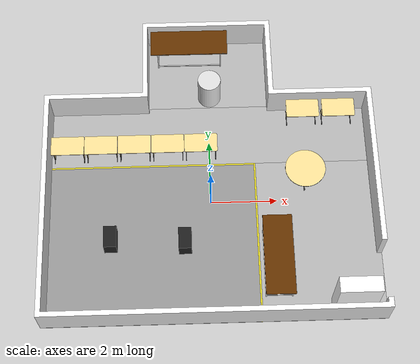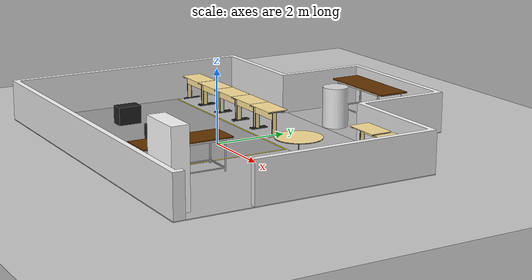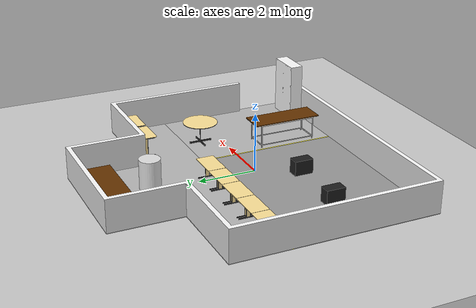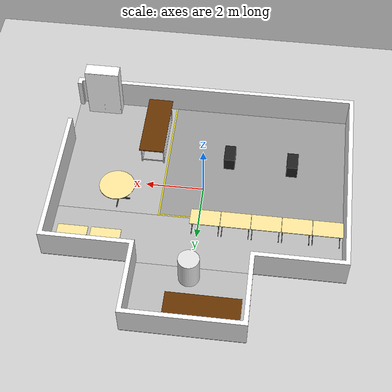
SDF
<sdf version="1.7">
 <world name="default">
  <light name="sun" type="directional">
   <cast_shadows>0</cast_shadows>
   <pose>0 0 10 0 -0 0</pose>
   <diffuse>0.8 0.8 0.8 1</diffuse>
   <specular>0.1 0.1 0.1 1</specular>
   <attenuation>
    <range>1000</range>
    <constant>0.9</constant>
    <linear>0.01</linear>
    <quadratic>0.001</quadratic>
   </attenuation>
   <direction>-0.5 0.5 -1</direction>
   <spot><inner_angle>0</inner_angle><outer_angle>0</outer_angle><falloff>0</falloff></spot>
  </light>
  <model name="ground_plane">
   <static>1</static>
   <link name="link">
    <collision name="collision">
     <geometry><plane><normal>0 0 1</normal><size>100 100</size></plane></geometry>
     <surface><friction><ode><mu>1</mu><mu2>2</mu2></ode></friction></surface>
    </collision>
    <visual name="visual">
     <cast_shadows>0</cast_shadows>
     <geometry><plane><normal>0 0 1</normal><size>100 100</size></plane></geometry>
     <material>
      <script><uri>file://media/materials/scripts/gazebo.material</uri><name>Gazebo/Grey</name></script>
     </material>
    </visual>
   </link>
  </model>
  <gravity>0 0 -9.8</gravity>
  <magnetic_field>6e-06 2.3e-05 -4.2e-05</magnetic_field>
  <atmosphere type="adiabatic"/>
  <physics name="default_physics" default="0" type="ode">
   <max_step_size>0.01</max_step_size>
   <real_time_factor>1</real_time_factor>
   <real_time_update_rate>100</real_time_update_rate>
  </physics>
  <scene><ambient>0.4 0.4 0.4 1</ambient><background>0.7 0.7 0.7 1</background><shadows>0</shadows></scene>
  <spherical_coordinates>
   <surface_model>EARTH_WGS84</surface_model>
   <latitude_deg>0</latitude_deg>
   <longitude_deg>0</longitude_deg>
   <elevation>0</elevation>
   <heading_deg>0</heading_deg>
  </spherical_coordinates>
  <model name="lar_floor">
   <pose>0 -0.25 0 0 -0 0</pose>
   <frame name="floor::__model__" attached_to="floor::floor">
    <pose relative_to="__model__">0 0 0 0 -0 0</pose>
   </frame>
   <link name="floor::floor">
    <pose relative_to="floor::__model__">0 0 0 0 -0 0</pose>
    <visual name="visual_1">
     <pose>3.2 -0.985 0.01 0 -0 0</pose>
     <geometry><box><size>3.6 5.03 0.02</size></box></geometry>
     <material>
      <script>
       <uri>model://lar_floor/materials/scripts/lar_floor.material</uri>
       <name>lar_floor/visual_1</name>
      </script>
     </material>
     <cast_shadows>0</cast_shadows>
    </visual>
    <visual name="visual_2">
     <pose>0 4.75 0.01 0 -0 0</pose>
     <geometry><box><size>4 2.5 0.02</size></box></geometry>
     <material>
      <script>
       <uri>model://lar_floor/materials/scripts/lar_floor.material</uri>
       <name>lar_floor/visual_2</name>
      </script>
     </material>
     <cast_shadows>0</cast_shadows>
    </visual>
    <visual name="visual_3">
     <pose>-1.825 -1.01 0.01 0 -0 0</pose>
     <geometry><box><size>6.35 4.98 0.02</size></box></geometry>
     <material>
      <script><uri>file://media/materials/scripts/gazebo.material</uri><name>Gazebo/Grey</name></script>
     </material>
     <cast_shadows>0</cast_shadows>
    </visual>
    <visual name="visual_4">
     <pose>1.375 -0.985 0.01 0 -0 0</pose>
     <geometry><box><size>0.05 5.03 0.02</size></box></geometry>
     <material>
      <script><uri>file://media/materials/scripts/gazebo.material</uri><name>Gazebo/DarkYellow</name></script>
     </material>
     <cast_shadows>0</cast_shadows>
    </visual>
    <visual name="visual_5">
     <pose>-1.825 1.505 0.01 0 -0 0</pose>
     <geometry><box><size>6.35 0.05 0.02</size></box></geometry>
     <material>
      <script><uri>file://media/materials/scripts/gazebo.material</uri><name>Gazebo/DarkYellow</name></script>
     </material>
     <cast_shadows>0</cast_shadows>
    </visual>
    <visual name="visual_6">
     <pose>0 2.515 0.01 0 -0 0</pose>
     <geometry><box><size>10 1.97 0.02</size></box></geometry>
     <material>
      <script>
       <uri>model://lar_floor/materials/scripts/lar_floor.material</uri>
       <name>lar_floor/visual_6</name>
      </script>
     </material>
     <cast_shadows>0</cast_shadows>
    </visual>
    <collision name="collision_1">
     <pose>0 0 0.01 0 -0 0</pose>
     <geometry><box><size>10 7 0.1</size></box></geometry>
     <surface><friction><ode><mu>0.4</mu><mu2>0.4</mu2></ode></friction></surface>
    </collision>
    <collision name="collision_2">
     <pose>0 4.75 0.01 0 -0 0</pose>
     <geometry><box><size>4 2.5 0.1</size></box></geometry>
     <surface><friction><ode><mu>0.5</mu><mu2>0.6</mu2></ode></friction></surface>
    </collision>
   </link>
   <static>1</static>
  </model>
  <model name="lar_walls">
   <pose>0 1 0 0 -0 0</pose>
   <frame name="walls::__model__" attached_to="walls::walls">
    <pose relative_to="__model__">0 0 0 0 -0 0</pose>
   </frame>
   <link name="walls::walls">
    <pose relative_to="walls::__model__">0 0 1.52 0 -0 0</pose>
    <inertial>
     <inertia><ixx>1</ixx><ixy>0</ixy><ixz>0</ixz><iyy>1</iyy><iyz>0</iyz><izz>1</izz></inertia>
     <mass>2000</mass>
    </inertial>
    <visual name="visual">
     <geometry><mesh><uri>model://lar_walls/meshes/lar_walls.dae</uri></mesh></geometry>
     <cast_shadows>0</cast_shadows>
     <material><shader type="vertex"><normal_map>__default__</normal_map></shader></material>
    </visual>
    <collision name="collisions">
     <geometry><mesh><uri>model://lar_walls/meshes/lar_walls.dae</uri></mesh></geometry>
     <surface>
      <friction>
       <ode><mu>1</mu><mu2>1</mu2><fdir1>0 0 0</fdir1><slip1>0</slip1><slip2>0</slip2></ode>
       <torsional>
        <coefficient>1</coefficient>
        <patch_radius>0</patch_radius>
        <surface_radius>0</surface_radius>
        <use_patch_radius>1</use_patch_radius>
        <ode><slip>0</slip></ode>
       </torsional>
      </friction>
      <bounce><restitution_coefficient>0</restitution_coefficient><threshold>1e+06</threshold></bounce>
      <contact>
       <collide_without_contact>0</collide_without_contact>
       <collide_without_contact_bitmask>1</collide_without_contact_bitmask>
       <collide_bitmask>1</collide_bitmask>
       <ode>
        <soft_cfm>0</soft_cfm>
        <soft_erp>0.2</soft_erp>
        <kp>1e+13</kp>
        <kd>1</kd>
        <max_vel>0.01</max_vel>
        <min_depth>0</min_depth>
       </ode>
       <bullet>
        <split_impulse>1</split_impulse>
        <split_impulse_penetration_threshold>-0.01</split_impulse_penetration_threshold>
        <soft_cfm>0</soft_cfm>
        <soft_erp>0.2</soft_erp>
        <kp>1e+13</kp>
        <kd>1</kd>
       </bullet>
      </contact>
     </surface>
    </collision>
   </link>
   <static>1</static>
  </model>
  <model name="lar_shelf">
   <pose>4 -3.35 -0 0 -0 1.57068</pose>
   <frame name="shelf::__model__" attached_to="shelf::shelf">
    <pose relative_to="__model__">0 0 0 0 -0 0</pose>
   </frame>
   <link name="shelf::shelf">
    <pose relative_to="shelf::__model__">0 0 1.01 0 -0 0</pose>
    <inertial>
     <inertia><ixx>1</ixx><ixy>0</ixy><ixz>0</ixz><iyy>1</iyy><iyz>0</iyz><izz>1</izz></inertia>
     <mass>20</mass>
    </inertial>
    <visual name="visual">
     <geometry><mesh><uri>model://lar_shelf/meshes/lar_shelf.dae</uri></mesh></geometry>
     <cast_shadows>0</cast_shadows>
     <material>
      <lighting>1</lighting>
      <ambient>1 1 1 1</ambient>
      <diffuse>1 1 1 1</diffuse>
      <specular>1 1 1 1</specular>
      <emissive>0 0 0 1</emissive>
      <shader type="vertex"><normal_map>__default__</normal_map></shader>
     </material>
    </visual>
    <collision name="collisions">
     <geometry><box><size>0.454 1.2 1.98</size></box></geometry>
     <surface>
      <friction>
       <ode><mu>1</mu><mu2>1</mu2><fdir1>0 0 0</fdir1><slip1>0</slip1><slip2>0</slip2></ode>
       <torsional>
        <coefficient>1</coefficient>
        <patch_radius>0</patch_radius>
        <surface_radius>0</surface_radius>
        <use_patch_radius>1</use_patch_radius>
        <ode><slip>0</slip></ode>
       </torsional>
      </friction>
      <bounce><restitution_coefficient>0</restitution_coefficient><threshold>1e+06</threshold></bounce>
      <contact>
       <collide_without_contact>0</collide_without_contact>
       <collide_without_contact_bitmask>1</collide_without_contact_bitmask>
       <collide_bitmask>1</collide_bitmask>
       <ode>
        <soft_cfm>0</soft_cfm>
        <soft_erp>0.2</soft_erp>
        <kp>1e+13</kp>
        <kd>1</kd>
        <max_vel>0.01</max_vel>
        <min_depth>0</min_depth>
       </ode>
       <bullet>
        <split_impulse>1</split_impulse>
        <split_impulse_penetration_threshold>-0.01</split_impulse_penetration_threshold>
        <soft_cfm>0</soft_cfm>
        <soft_erp>0.2</soft_erp>
        <kp>1e+13</kp>
        <kd>1</kd>
       </bullet>
      </contact>
     </surface>
    </collision>
   </link>
   <static>1</static>
  </model>
  <model name="lar_table_great_0">
   <pose>1.9 -2 0 0 -0 0</pose>
   <frame name="great_table_0::__model__" attached_to="great_table_0::great_table">
    <pose relative_to="__model__">0 0 0 0 -0 0</pose>
   </frame>
   <link name="great_table_0::great_table">
    <pose relative_to="great_table_0::__model__">0 0 0.445 0 -0 0</pose>
    <inertial>
     <inertia><ixx>1</ixx><ixy>0</ixy><ixz>0</ixz><iyy>1</iyy><iyz>0</iyz><izz>1</izz></inertia>
     <mass>25</mass>
    </inertial>
    <visual name="visual">
     <geometry><mesh><uri>model://lar_table_great/meshes/lar_table_great.dae</uri></mesh></geometry>
     <cast_shadows>0</cast_shadows>
     <material><shader type="vertex"><normal_map>__default__</normal_map></shader></material>
    </visual>
    <collision name="collisions">
     <geometry><mesh><uri>model://lar_table_great/meshes/lar_table_great.dae</uri></mesh></geometry>
     <surface>
      <friction>
       <ode><mu>1</mu><mu2>1</mu2><fdir1>0 0 0</fdir1><slip1>0</slip1><slip2>0</slip2></ode>
       <torsional>
        <coefficient>1</coefficient>
        <patch_radius>0</patch_radius>
        <surface_radius>0</surface_radius>
        <use_patch_radius>1</use_patch_radius>
        <ode><slip>0</slip></ode>
       </torsional>
      </friction>
      <bounce><restitution_coefficient>0</restitution_coefficient><threshold>1e+06</threshold></bounce>
      <contact>
       <collide_without_contact>0</collide_without_contact>
       <collide_without_contact_bitmask>1</collide_without_contact_bitmask>
       <collide_bitmask>1</collide_bitmask>
       <ode>
        <soft_cfm>0</soft_cfm>
        <soft_erp>0.2</soft_erp>
        <kp>1e+13</kp>
        <kd>1</kd>
        <max_vel>0.01</max_vel>
        <min_depth>0</min_depth>
       </ode>
       <bullet>
        <split_impulse>1</split_impulse>
        <split_impulse_penetration_threshold>-0.01</split_impulse_penetration_threshold>
        <soft_cfm>0</soft_cfm>
        <soft_erp>0.2</soft_erp>
        <kp>1e+13</kp>
        <kd>1</kd>
       </bullet>
      </contact>
     </surface>
    </collision>
   </link>
   <static>1</static>
  </model>
  <model name="lar_table_great_1">
   <pose>-0.55 5.15 -0 0 -0 1.5708</pose>
   <frame name="great_table_1::__model__" attached_to="great_table_1::great_table">
    <pose relative_to="__model__">0 0 0 0 -0 0</pose>
   </frame>
   <link name="great_table_1::great_table">
    <pose relative_to="great_table_1::__model__">0 0 0.445 0 -0 0</pose>
    <inertial>
     <inertia><ixx>1</ixx><ixy>0</ixy><ixz>0</ixz><iyy>1</iyy><iyz>0</iyz><izz>1</izz></inertia>
     <mass>25</mass>
    </inertial>
    <visual name="visual">
     <geometry><mesh><uri>model://lar_table_great/meshes/lar_table_great.dae</uri></mesh></geometry>
     <cast_shadows>0</cast_shadows>
     <material><shader type="vertex"><normal_map>__default__</normal_map></shader></material>
    </visual>
    <collision name="collisions">
     <geometry><mesh><uri>model://lar_table_great/meshes/lar_table_great.dae</uri></mesh></geometry>
     <surface>
      <friction>
       <ode><mu>1</mu><mu2>1</mu2><fdir1>0 0 0</fdir1><slip1>0</slip1><slip2>0</slip2></ode>
       <torsional>
        <coefficient>1</coefficient>
        <patch_radius>0</patch_radius>
        <surface_radius>0</surface_radius>
        <use_patch_radius>1</use_patch_radius>
        <ode><slip>0</slip></ode>
       </torsional>
      </friction>
      <bounce><restitution_coefficient>0</restitution_coefficient><threshold>1e+06</threshold></bounce>
      <contact>
       <collide_without_contact>0</collide_without_contact>
       <collide_without_contact_bitmask>1</collide_without_contact_bitmask>
       <collide_bitmask>1</collide_bitmask>
       <ode>
        <soft_cfm>0</soft_cfm>
        <soft_erp>0.2</soft_erp>
        <kp>1e+13</kp>
        <kd>1</kd>
        <max_vel>0.01</max_vel>
        <min_depth>0</min_depth>
       </ode>
       <bullet>
        <split_impulse>1</split_impulse>
        <split_impulse_penetration_threshold>-0.01</split_impulse_penetration_threshold>
        <soft_cfm>0</soft_cfm>
        <soft_erp>0.2</soft_erp>
        <kp>1e+13</kp>
        <kd>1</kd>
       </bullet>
      </contact>
     </surface>
    </collision>
   </link>
   <static>1</static>
  </model>
  <model name="lar_table_pc_0">
   <pose>-4.3 1.68 0 0 -0 0</pose>
   <frame name="pc_table_0::__model__" attached_to="pc_table_0::pc_table">
    <pose relative_to="__model__">0 0 0 0 -0 0</pose>
   </frame>
   <link name="pc_table_0::pc_table">
    <pose relative_to="pc_table_0::__model__">0 0 0.37 0 -0 0</pose>
    <inertial>
     <inertia><ixx>1</ixx><ixy>0</ixy><ixz>0</ixz><iyy>1</iyy><iyz>0</iyz><izz>1</izz></inertia>
     <mass>12</mass>
    </inertial>
    <visual name="visual">
     <geometry><mesh><uri>model://lar_table_pc/meshes/lar_table_pc.dae</uri></mesh></geometry>
     <cast_shadows>0</cast_shadows>
     <material><shader type="vertex"><normal_map>__default__</normal_map></shader></material>
    </visual>
    <collision name="collisions">
     <geometry><mesh><uri>model://lar_table_pc/meshes/lar_table_pc.dae</uri></mesh></geometry>
     <surface>
      <friction>
       <ode><mu>1</mu><mu2>1</mu2><fdir1>0 0 0</fdir1><slip1>0</slip1><slip2>0</slip2></ode>
       <torsional>
        <coefficient>1</coefficient>
        <patch_radius>0</patch_radius>
        <surface_radius>0</surface_radius>
        <use_patch_radius>1</use_patch_radius>
        <ode><slip>0</slip></ode>
       </torsional>
      </friction>
      <bounce><restitution_coefficient>0</restitution_coefficient><threshold>1e+06</threshold></bounce>
      <contact>
       <collide_without_contact>0</collide_without_contact>
       <collide_without_contact_bitmask>1</collide_without_contact_bitmask>
       <collide_bitmask>1</collide_bitmask>
       <ode>
        <soft_cfm>0</soft_cfm>
        <soft_erp>0.2</soft_erp>
        <kp>1e+13</kp>
        <kd>1</kd>
        <max_vel>0.01</max_vel>
        <min_depth>0</min_depth>
       </ode>
       <bullet>
        <split_impulse>1</split_impulse>
        <split_impulse_penetration_threshold>-0.01</split_impulse_penetration_threshold>
        <soft_cfm>0</soft_cfm>
        <soft_erp>0.2</soft_erp>
        <kp>1e+13</kp>
        <kd>1</kd>
       </bullet>
      </contact>
     </surface>
    </collision>
   </link>
   <static>1</static>
  </model>
  <model name="lar_table_pc_1">
   <pose>-3.29 1.68 0 0 -0 0</pose>
   <frame name="pc_table_1::__model__" attached_to="pc_table_1::pc_table">
    <pose relative_to="__model__">0 0 0 0 -0 0</pose>
   </frame>
   <link name="pc_table_1::pc_table">
    <pose relative_to="pc_table_1::__model__">0 0 0.37 0 -0 0</pose>
    <inertial>
     <inertia><ixx>1</ixx><ixy>0</ixy><ixz>0</ixz><iyy>1</iyy><iyz>0</iyz><izz>1</izz></inertia>
     <mass>12</mass>
    </inertial>
    <visual name="visual">
     <geometry><mesh><uri>model://lar_table_pc/meshes/lar_table_pc.dae</uri></mesh></geometry>
     <cast_shadows>0</cast_shadows>
     <material><shader type="vertex"><normal_map>__default__</normal_map></shader></material>
    </visual>
    <collision name="collisions">
     <geometry><mesh><uri>model://lar_table_pc/meshes/lar_table_pc.dae</uri></mesh></geometry>
     <surface>
      <friction>
       <ode><mu>1</mu><mu2>1</mu2><fdir1>0 0 0</fdir1><slip1>0</slip1><slip2>0</slip2></ode>
       <torsional>
        <coefficient>1</coefficient>
        <patch_radius>0</patch_radius>
        <surface_radius>0</surface_radius>
        <use_patch_radius>1</use_patch_radius>
        <ode><slip>0</slip></ode>
       </torsional>
      </friction>
      <bounce><restitution_coefficient>0</restitution_coefficient><threshold>1e+06</threshold></bounce>
      <contact>
       <collide_without_contact>0</collide_without_contact>
       <collide_without_contact_bitmask>1</collide_without_contact_bitmask>
       <collide_bitmask>1</collide_bitmask>
       <ode>
        <soft_cfm>0</soft_cfm>
        <soft_erp>0.2</soft_erp>
        <kp>1e+13</kp>
        <kd>1</kd>
        <max_vel>0.01</max_vel>
        <min_depth>0</min_depth>
       </ode>
       <bullet>
        <split_impulse>1</split_impulse>
        <split_impulse_penetration_threshold>-0.01</split_impulse_penetration_threshold>
        <soft_cfm>0</soft_cfm>
        <soft_erp>0.2</soft_erp>
        <kp>1e+13</kp>
        <kd>1</kd>
       </bullet>
      </contact>
     </surface>
    </collision>
   </link>
   <static>1</static>
  </model>
  <model name="lar_table_pc_2">
   <pose>-2.28 1.68 0 0 -0 0</pose>
   <frame name="pc_table_2::__model__" attached_to="pc_table_2::pc_table">
    <pose relative_to="__model__">0 0 0 0 -0 0</pose>
   </frame>
   <link name="pc_table_2::pc_table">
    <pose relative_to="pc_table_2::__model__">0 0 0.37 0 -0 0</pose>
    <inertial>
     <inertia><ixx>1</ixx><ixy>0</ixy><ixz>0</ixz><iyy>1</iyy><iyz>0</iyz><izz>1</izz></inertia>
     <mass>12</mass>
    </inertial>
    <visual name="visual">
     <geometry><mesh><uri>model://lar_table_pc/meshes/lar_table_pc.dae</uri></mesh></geometry>
     <cast_shadows>0</cast_shadows>
     <material><shader type="vertex"><normal_map>__default__</normal_map></shader></material>
    </visual>
    <collision name="collisions">
     <geometry><mesh><uri>model://lar_table_pc/meshes/lar_table_pc.dae</uri></mesh></geometry>
     <surface>
      <friction>
       <ode><mu>1</mu><mu2>1</mu2><fdir1>0 0 0</fdir1><slip1>0</slip1><slip2>0</slip2></ode>
       <torsional>
        <coefficient>1</coefficient>
        <patch_radius>0</patch_radius>
        <surface_radius>0</surface_radius>
        <use_patch_radius>1</use_patch_radius>
        <ode><slip>0</slip></ode>
       </torsional>
      </friction>
      <bounce><restitution_coefficient>0</restitution_coefficient><threshold>1e+06</threshold></bounce>
      <contact>
       <collide_without_contact>0</collide_without_contact>
       <collide_without_contact_bitmask>1</collide_without_contact_bitmask>
       <collide_bitmask>1</collide_bitmask>
       <ode>
        <soft_cfm>0</soft_cfm>
        <soft_erp>0.2</soft_erp>
        <kp>1e+13</kp>
        <kd>1</kd>
        <max_vel>0.01</max_vel>
        <min_depth>0</min_depth>
       </ode>
       <bullet>
        <split_impulse>1</split_impulse>
        <split_impulse_penetration_threshold>-0.01</split_impulse_penetration_threshold>
        <soft_cfm>0</soft_cfm>
        <soft_erp>0.2</soft_erp>
        <kp>1e+13</kp>
        <kd>1</kd>
       </bullet>
      </contact>
     </surface>
    </collision>
   </link>
   <static>1</static>
  </model>
  <model name="lar_table_pc_3">
   <pose>-1.27 1.68 0 0 -0 0</pose>
   <frame name="pc_table_3::__model__" attached_to="pc_table_3::pc_table">
    <pose relative_to="__model__">0 0 0 0 -0 0</pose>
   </frame>
   <link name="pc_table_3::pc_table">
    <pose relative_to="pc_table_3::__model__">0 0 0.37 0 -0 0</pose>
    <inertial>
     <inertia><ixx>1</ixx><ixy>0</ixy><ixz>0</ixz><iyy>1</iyy><iyz>0</iyz><izz>1</izz></inertia>
     <mass>12</mass>
    </inertial>
    <visual name="visual">
     <geometry><mesh><uri>model://lar_table_pc/meshes/lar_table_pc.dae</uri></mesh></geometry>
     <cast_shadows>0</cast_shadows>
     <material><shader type="vertex"><normal_map>__default__</normal_map></shader></material>
    </visual>
    <collision name="collisions">
     <geometry><mesh><uri>model://lar_table_pc/meshes/lar_table_pc.dae</uri></mesh></geometry>
     <surface>
      <friction>
       <ode><mu>1</mu><mu2>1</mu2><fdir1>0 0 0</fdir1><slip1>0</slip1><slip2>0</slip2></ode>
       <torsional>
        <coefficient>1</coefficient>
        <patch_radius>0</patch_radius>
        <surface_radius>0</surface_radius>
        <use_patch_radius>1</use_patch_radius>
        <ode><slip>0</slip></ode>
       </torsional>
      </friction>
      <bounce><restitution_coefficient>0</restitution_coefficient><threshold>1e+06</threshold></bounce>
      <contact>
       <collide_without_contact>0</collide_without_contact>
       <collide_without_contact_bitmask>1</collide_without_contact_bitmask>
       <collide_bitmask>1</collide_bitmask>
       <ode>
        <soft_cfm>0</soft_cfm>
        <soft_erp>0.2</soft_erp>
        <kp>1e+13</kp>
        <kd>1</kd>
        <max_vel>0.01</max_vel>
        <min_depth>0</min_depth>
       </ode>
       <bullet>
        <split_impulse>1</split_impulse>
        <split_impulse_penetration_threshold>-0.01</split_impulse_penetration_threshold>
        <soft_cfm>0</soft_cfm>
        <soft_erp>0.2</soft_erp>
        <kp>1e+13</kp>
        <kd>1</kd>
       </bullet>
      </contact>
     </surface>
    </collision>
   </link>
   <static>1</static>
  </model>
  <model name="lar_table_pc_4">
   <pose>-0.26 1.68 0 0 -0 0</pose>
   <frame name="pc_table_4::__model__" attached_to="pc_table_4::pc_table">
    <pose relative_to="__model__">0 0 0 0 -0 0</pose>
   </frame>
   <link name="pc_table_4::pc_table">
    <pose relative_to="pc_table_4::__model__">0 0 0.37 0 -0 0</pose>
    <inertial>
     <inertia><ixx>1</ixx><ixy>0</ixy><ixz>0</ixz><iyy>1</iyy><iyz>0</iyz><izz>1</izz></inertia>
     <mass>12</mass>
    </inertial>
    <visual name="visual">
     <geometry><mesh><uri>model://lar_table_pc/meshes/lar_table_pc.dae</uri></mesh></geometry>
     <cast_shadows>0</cast_shadows>
     <material><shader type="vertex"><normal_map>__default__</normal_map></shader></material>
    </visual>
    <collision name="collisions">
     <geometry><mesh><uri>model://lar_table_pc/meshes/lar_table_pc.dae</uri></mesh></geometry>
     <surface>
      <friction>
       <ode><mu>1</mu><mu2>1</mu2><fdir1>0 0 0</fdir1><slip1>0</slip1><slip2>0</slip2></ode>
       <torsional>
        <coefficient>1</coefficient>
        <patch_radius>0</patch_radius>
        <surface_radius>0</surface_radius>
        <use_patch_radius>1</use_patch_radius>
        <ode><slip>0</slip></ode>
       </torsional>
      </friction>
      <bounce><restitution_coefficient>0</restitution_coefficient><threshold>1e+06</threshold></bounce>
      <contact>
       <collide_without_contact>0</collide_without_contact>
       <collide_without_contact_bitmask>1</collide_without_contact_bitmask>
       <collide_bitmask>1</collide_bitmask>
       <ode>
        <soft_cfm>0</soft_cfm>
        <soft_erp>0.2</soft_erp>
        <kp>1e+13</kp>
        <kd>1</kd>
        <max_vel>0.01</max_vel>
        <min_depth>0</min_depth>
       </ode>
       <bullet>
        <split_impulse>1</split_impulse>
        <split_impulse_penetration_threshold>-0.01</split_impulse_penetration_threshold>
        <soft_cfm>0</soft_cfm>
        <soft_erp>0.2</soft_erp>
        <kp>1e+13</kp>
        <kd>1</kd>
       </bullet>
      </contact>
     </surface>
    </collision>
   </link>
   <static>1</static>
  </model>
  <model name="lar_table_pc_5">
   <pose>4 2.8 0 0 0 -3.14159</pose>
   <frame name="pc_table_5::__model__" attached_to="pc_table_5::pc_table">
    <pose relative_to="__model__">0 0 0 0 -0 0</pose>
   </frame>
   <link name="pc_table_5::pc_table">
    <pose relative_to="pc_table_5::__model__">0 0 0.37 0 -0 0</pose>
    <inertial>
     <inertia><ixx>1</ixx><ixy>0</ixy><ixz>0</ixz><iyy>1</iyy><iyz>0</iyz><izz>1</izz></inertia>
     <mass>12</mass>
    </inertial>
    <visual name="visual">
     <geometry><mesh><uri>model://lar_table_pc/meshes/lar_table_pc.dae</uri></mesh></geometry>
     <cast_shadows>0</cast_shadows>
     <material><shader type="vertex"><normal_map>__default__</normal_map></shader></material>
    </visual>
    <collision name="collisions">
     <geometry><mesh><uri>model://lar_table_pc/meshes/lar_table_pc.dae</uri></mesh></geometry>
     <surface>
      <friction>
       <ode><mu>1</mu><mu2>1</mu2><fdir1>0 0 0</fdir1><slip1>0</slip1><slip2>0</slip2></ode>
       <torsional>
        <coefficient>1</coefficient>
        <patch_radius>0</patch_radius>
        <surface_radius>0</surface_radius>
        <use_patch_radius>1</use_patch_radius>
        <ode><slip>0</slip></ode>
       </torsional>
      </friction>
      <bounce><restitution_coefficient>0</restitution_coefficient><threshold>1e+06</threshold></bounce>
      <contact>
       <collide_without_contact>0</collide_without_contact>
       <collide_without_contact_bitmask>1</collide_without_contact_bitmask>
       <collide_bitmask>1</collide_bitmask>
       <ode>
        <soft_cfm>0</soft_cfm>
        <soft_erp>0.2</soft_erp>
        <kp>1e+13</kp>
        <kd>1</kd>
        <max_vel>0.01</max_vel>
        <min_depth>0</min_depth>
       </ode>
       <bullet>
        <split_impulse>1</split_impulse>
        <split_impulse_penetration_threshold>-0.01</split_impulse_penetration_threshold>
        <soft_cfm>0</soft_cfm>
        <soft_erp>0.2</soft_erp>
        <kp>1e+13</kp>
        <kd>1</kd>
       </bullet>
      </contact>
     </surface>
    </collision>
   </link>
   <static>1</static>
  </model>
  <model name="lar_table_pc_6">
   <pose>2.9 2.8 0 0 -0 3.14159</pose>
   <frame name="pc_table_6::__model__" attached_to="pc_table_6::pc_table">
    <pose relative_to="__model__">0 0 0 0 -0 0</pose>
   </frame>
   <link name="pc_table_6::pc_table">
    <pose relative_to="pc_table_6::__model__">0 0 0.37 0 -0 0</pose>
    <inertial>
     <inertia><ixx>1</ixx><ixy>0</ixy><ixz>0</ixz><iyy>1</iyy><iyz>0</iyz><izz>1</izz></inertia>
     <mass>12</mass>
    </inertial>
    <visual name="visual">
     <geometry><mesh><uri>model://lar_table_pc/meshes/lar_table_pc.dae</uri></mesh></geometry>
     <cast_shadows>0</cast_shadows>
     <material><shader type="vertex"><normal_map>__default__</normal_map></shader></material>
    </visual>
    <collision name="collisions">
     <geometry><mesh><uri>model://lar_table_pc/meshes/lar_table_pc.dae</uri></mesh></geometry>
     <surface>
      <friction>
       <ode><mu>1</mu><mu2>1</mu2><fdir1>0 0 0</fdir1><slip1>0</slip1><slip2>0</slip2></ode>
       <torsional>
        <coefficient>1</coefficient>
        <patch_radius>0</patch_radius>
        <surface_radius>0</surface_radius>
        <use_patch_radius>1</use_patch_radius>
        <ode><slip>0</slip></ode>
       </torsional>
      </friction>
      <bounce><restitution_coefficient>0</restitution_coefficient><threshold>1e+06</threshold></bounce>
      <contact>
       <collide_without_contact>0</collide_without_contact>
       <collide_without_contact_bitmask>1</collide_without_contact_bitmask>
       <collide_bitmask>1</collide_bitmask>
       <ode>
        <soft_cfm>0</soft_cfm>
        <soft_erp>0.2</soft_erp>
        <kp>1e+13</kp>
        <kd>1</kd>
        <max_vel>0.01</max_vel>
        <min_depth>0</min_depth>
       </ode>
       <bullet>
        <split_impulse>1</split_impulse>
        <split_impulse_penetration_threshold>-0.01</split_impulse_penetration_threshold>
        <soft_cfm>0</soft_cfm>
        <soft_erp>0.2</soft_erp>
        <kp>1e+13</kp>
        <kd>1</kd>
       </bullet>
      </contact>
     </surface>
    </collision>
   </link>
   <static>1</static>
  </model>
  <model name="lar_table_circular">
   <pose>2.84873 0.721151 0 0 -0 0</pose>
   <frame name="circular_table::__model__" attached_to="circular_table::circular_table">
    <pose relative_to="__model__">0 0 0 0 -0 0</pose>
   </frame>
   <link name="circular_table::circular_table">
    <pose relative_to="circular_table::__model__">0 0 0.388 0 -0 0</pose>
    <inertial>
     <inertia><ixx>1</ixx><ixy>0</ixy><ixz>0</ixz><iyy>1</iyy><iyz>0</iyz><izz>1</izz></inertia>
     <mass>5</mass>
    </inertial>
    <visual name="visual">
     <geometry><mesh><uri>model://lar_table_circular/meshes/lar_table_circular.dae</uri></mesh></geometry>
     <cast_shadows>0</cast_shadows>
     <material><shader type="vertex"><normal_map>__default__</normal_map></shader></material>
    </visual>
    <collision name="collisions">
     <geometry><mesh><uri>model://lar_table_circular/meshes/lar_table_circular.dae</uri></mesh></geometry>
     <surface>
      <friction>
       <ode><mu>1</mu><mu2>1</mu2><fdir1>0 0 0</fdir1><slip1>0</slip1><slip2>0</slip2></ode>
       <torsional>
        <coefficient>1</coefficient>
        <patch_radius>0</patch_radius>
        <surface_radius>0</surface_radius>
        <use_patch_radius>1</use_patch_radius>
        <ode><slip>0</slip></ode>
       </torsional>
      </friction>
      <bounce><restitution_coefficient>0</restitution_coefficient><threshold>1e+06</threshold></bounce>
      <contact>
       <collide_without_contact>0</collide_without_contact>
       <collide_without_contact_bitmask>1</collide_without_contact_bitmask>
       <collide_bitmask>1</collide_bitmask>
       <ode>
        <soft_cfm>0</soft_cfm>
        <soft_erp>0.2</soft_erp>
        <kp>1e+13</kp>
        <kd>1</kd>
        <max_vel>0.01</max_vel>
        <min_depth>0</min_depth>
       </ode>
       <bullet>
        <split_impulse>1</split_impulse>
        <split_impulse_penetration_threshold>-0.01</split_impulse_penetration_threshold>
        <soft_cfm>0</soft_cfm>
        <soft_erp>0.2</soft_erp>
        <kp>1e+13</kp>
        <kd>1</kd>
       </bullet>
      </contact>
     </surface>
    </collision>
   </link>
   <static>1</static>
  </model>
  <model name="box_0">
   <pose>-0.8 -1.3 0 0 -0 1.5708</pose>
   <frame name="box_0::__model__" attached_to="box_0::link">
    <pose relative_to="__model__">0 0 0 0 -0 0</pose>
   </frame>
   <static>1</static>
   <link name="box_0::link">
    <pose relative_to="box_0::__model__">0 0 0.28 0 -0 0</pose>
    <collision name="collision"><geometry><box><size>0.65 0.38 0.5</size></box></geometry></collision>
    <visual name="visual">
     <cast_shadows>0</cast_shadows>
     <geometry><box><size>0.65 0.38 0.5</size></box></geometry>
     <material>
      <script><uri>file://media/materials/scripts/gazebo.material</uri><name>Gazebo/Black</name></script>
     </material>
    </visual>
   </link>
  </model>
  <model name="box_1">
   <pose>-3 -1.2 0 0 -0 1.5708</pose>
   <frame name="box_1::__model__" attached_to="box_1::link">
    <pose relative_to="__model__">0 0 0 0 -0 0</pose>
   </frame>
   <static>1</static>
   <link name="box_1::link">
    <pose relative_to="box_1::__model__">0 0 0.28 0 -0 0</pose>
    <collision name="collision"><geometry><box><size>0.65 0.38 0.5</size></box></geometry></collision>
    <visual name="visual">
     <cast_shadows>0</cast_shadows>
     <geometry><box><size>0.65 0.38 0.5</size></box></geometry>
     <material>
      <script><uri>file://media/materials/scripts/gazebo.material</uri><name>Gazebo/Black</name></script>
     </material>
    </visual>
   </link>
  </model>
 </world>
</sdf>
